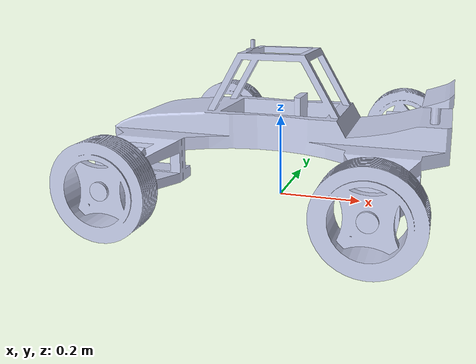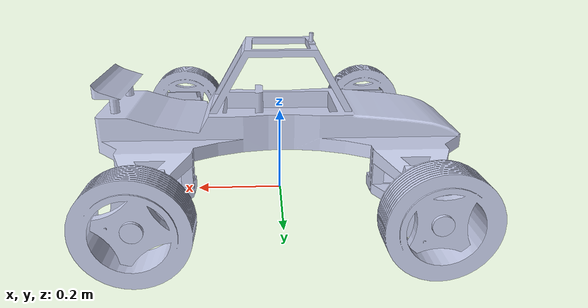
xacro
<?xml version="1.0" ?>
<robot
  name="mobile_car" xmlns:xacro="http://ros.org/wiki/xacro">

  <xacro:macro name="base_link_color">
    <visual>
      <material>
        <ambient>255 0 0 1</ambient>
        <diffuse>255 0 0 1</diffuse>
        <specular>0.1 0.1 0.1 1</specular>
        <emissive>0 0 0 0</emissive>
      </material>
    </visual>
  </xacro:macro>
  <xacro:macro name="lidar_link_color">
    <visual>
      <material>
        <ambient>0 0 225 1</ambient>
        <diffuse>0 0 225 1</diffuse>
        <specular>0.1 0.1 0.1 1</specular>
        <emissive>0 0 0 0</emissive>
      </material>
    </visual>
  </xacro:macro>
  <xacro:macro name="axle_link_color">
    <visual>
      <material>
        <ambient>0 0 0 0.6</ambient>
        <diffuse>0 0 0 0.6</diffuse>
        <specular>0.1 0.1 0.1 1</specular>
        <emissive>0 0 0 0</emissive>
      </material>
    </visual>
  </xacro:macro>
  <xacro:macro name="wheel_link_color">
    <visual>
      <material>
        <ambient>0 0 0 1</ambient>
        <diffuse>0 0 0 1</diffuse>
        <specular>0.1 0.1 0.1 1</specular>
        <emissive>0 0 0 0</emissive>
      </material>
    </visual>
  </xacro:macro>

  # Add this before base link
  <link name="dummy_link"></link>

  <link
    name="base_link">
    <inertial>
      <origin
        xyz="0.010446 -0.00042509 0.16313"
        rpy="0 0 0" />
      <mass
        value="15.415" />
      <inertia
        ixx="0.21291"
        ixy="0.00016421"
        ixz="-0.010824"
        iyy="0.97098"
        iyz="0.00020671"
        izz="1.1289" />
    </inertial>
    <visual>
      <origin
        xyz="0 0 0"
        rpy="0 0 0" />
      <geometry>
        <mesh
          filename="package://mobile_car/meshes/base_link.STL" />
      </geometry>
      <material
        name="">
        <color
          rgba="0.79216 0.81961 0.93333 1" />
      </material>
    </visual>
    <collision>
      <origin
        xyz="0 0 0"
        rpy="0 0 0" />
      <geometry>
        <mesh
          filename="package://mobile_car/meshes/base_link.STL" />
      </geometry>
    </collision>
  </link>

  # Add this after base link
  <joint name="dummy_joint" type="fixed">
    <origin rpy="0 0 0" xyz="0 0 0" />
    <parent link="dummy_link"/>
    <child link="base_link"/>
  </joint>

  <link
    name="axle_link1">
    <inertial>
      <origin
        xyz="-2.3443E-08 0.034189 0.055744"
        rpy="0 0 0" />
      <mass
        value="0.33741" />
      <inertia
        ixx="0.00067039"
        ixy="-1.3884E-10"
        ixz="3.3628E-10"
        iyy="0.00061682"
        iyz="-5.2053E-06"
        izz="0.00043913" />
    </inertial>
    <visual>
      <origin
        xyz="0 0 0"
        rpy="0 0 0" />
      <geometry>
        <mesh
          filename="package://mobile_car/meshes/axle_link1.STL" />
      </geometry>
      <material
        name="">
        <color
          rgba="0.79216 0.81961 0.93333 1" />
      </material>
    </visual>
    <collision>
      <origin
        xyz="0 0 0"
        rpy="0 0 0" />
      <geometry>
        <mesh
          filename="package://mobile_car/meshes/axle_link1.STL" />
      </geometry>
    </collision>
  </link>
  <joint
    name="axle_joint1"
    type="revolute">
    <origin
      xyz="-0.26801 -0.2736 0.051"
      rpy="0 0 3.1397" />
    <parent
      link="base_link" />
    <child
      link="axle_link1" />
    <axis
      xyz="0 0 -1" />
    <limit
      lower="-0.6"
      upper="0.6"
      effort="10"
      velocity="1" />
  </joint>
  <link
    name="wheel_link1">
    <inertial>
      <origin
        xyz="-0.034286 1.5219E-06 -1.7489E-06"
        rpy="0 0 0" />
      <mass
        value="0.8084" />
      <inertia
        ixx="0.0053814"
        ixy="1.6143E-08"
        ixz="-1.8551E-08"
        iyy="0.0029763"
        iyz="4.1157E-08"
        izz="0.0029604" />
    </inertial>
    <visual>
      <origin
        xyz="0 0 0"
        rpy="0 0 0" />
      <geometry>
        <mesh
          filename="package://mobile_car/meshes/wheel_link1.STL" />
      </geometry>
      <material
        name="">
        <color
          rgba="0.79216 0.81961 0.93333 1" />
      </material>
    </visual>
    <collision>
      <origin
        xyz="0 0 0"
        rpy="0 0 0" />
      <geometry>
        <mesh
          filename="package://mobile_car/meshes/wheel_link1.STL" />
      </geometry>
    </collision>
  </link>
  <joint
    name="wheel_joint1"
    type="continuous">
    <origin
      xyz="0 0.050593 0.058981"
      rpy="0 0 -1.5708" />
    <parent
      link="axle_link1" />
    <child
      link="wheel_link1" />
    <axis
      xyz="-1 0 0" />
    <limit
      effort="300"
      velocity="10" />
  </joint>
  <link
    name="axle_link2">
    <inertial>
      <origin
        xyz="-2.3448E-08 0.034189 0.055744"
        rpy="0 0 0" />
      <mass
        value="0.33741" />
      <inertia
        ixx="0.00067039"
        ixy="-1.3888E-10"
        ixz="3.3636E-10"
        iyy="0.00061682"
        iyz="-5.2053E-06"
        izz="0.00043913" />
    </inertial>
    <visual>
      <origin
        xyz="0 0 0"
        rpy="0 0 0" />
      <geometry>
        <mesh
          filename="package://mobile_car/meshes/axle_link2.STL" />
      </geometry>
      <material
        name="">
        <color
          rgba="0.79216 0.81961 0.93333 1" />
      </material>
    </visual>
    <collision>
      <origin
        xyz="0 0 0"
        rpy="0 0 0" />
      <geometry>
        <mesh
          filename="package://mobile_car/meshes/axle_link2.STL" />
      </geometry>
    </collision>
  </link>
  <joint
    name="axle_joint2"
    type="fixed">
    <origin
      xyz="0.26801 -0.2736 0.051"
      rpy="0 0 3.1385" />
    <parent
      link="base_link" />
    <child
      link="axle_link2" />
    <axis
      xyz="0 0 -1" />
  </joint>
  <link
    name="wheel_link2">
    <inertial>
      <origin
        xyz="-0.034544 1.5219E-06 -1.7489E-06"
        rpy="0 0 0" />
      <mass
        value="0.8084" />
      <inertia
        ixx="0.0053814"
        ixy="1.6143E-08"
        ixz="-1.8551E-08"
        iyy="0.0029763"
        iyz="4.1157E-08"
        izz="0.0029604" />
    </inertial>
    <visual>
      <origin
        xyz="0 0 0"
        rpy="0 0 0" />
      <geometry>
        <mesh
          filename="package://mobile_car/meshes/wheel_link2.STL" />
      </geometry>
      <material
        name="">
        <color
          rgba="0.79216 0.81961 0.93333 1" />
      </material>
    </visual>
    <collision>
      <origin
        xyz="0 0 0"
        rpy="0 0 0" />
      <geometry>
        <mesh
          filename="package://mobile_car/meshes/wheel_link2.STL" />
      </geometry>
    </collision>
  </link>
  <joint
    name="wheel_joint2"
    type="continuous">
    <origin
      xyz="0 0.050336 0.058981"
      rpy="0 0 -1.5708" />
    <parent
      link="axle_link2" />
    <child
      link="wheel_link2" />
    <axis
      xyz="-1 0 0" />
    <limit
      effort="300"
      velocity="10" />
  </joint>
  <link
    name="axle_link3">
    <inertial>
      <origin
        xyz="-2.3457E-08 0.034189 0.055744"
        rpy="0 0 0" />
      <mass
        value="0.33741" />
      <inertia
        ixx="0.00067039"
        ixy="-1.3931E-10"
        ixz="3.3642E-10"
        iyy="0.00061682"
        iyz="-5.2053E-06"
        izz="0.00043913" />
    </inertial>
    <visual>
      <origin
        xyz="0 0 0"
        rpy="0 0 0" />
      <geometry>
        <mesh
          filename="package://mobile_car/meshes/axle_link3.STL" />
      </geometry>
      <material
        name="">
        <color
          rgba="0.79216 0.81961 0.93333 1" />
      </material>
    </visual>
    <collision>
      <origin
        xyz="0 0 0"
        rpy="0 0 0" />
      <geometry>
        <mesh
          filename="package://mobile_car/meshes/axle_link3.STL" />
      </geometry>
    </collision>
  </link>
  <joint
    name="axle_joint3"
    type="revolute">
    <origin
      xyz="-0.26801 0.2736 0.051"
      rpy="0 0 0.01392" />
    <parent
      link="base_link" />
    <child
      link="axle_link3" />
    <axis
      xyz="0 0 -1" />
    <limit
      lower="-0.6"
      upper="0.6"
      effort="10"
      velocity="1" />
  </joint>
  <link
    name="wheel_link3">
    <inertial>
      <origin
        xyz="-0.033866 1.5219E-06 -1.7489E-06"
        rpy="0 0 0" />
      <mass
        value="0.8084" />
      <inertia
        ixx="0.0053814"
        ixy="1.6143E-08"
        ixz="-1.8551E-08"
        iyy="0.0029763"
        iyz="4.1157E-08"
        izz="0.0029604" />
    </inertial>
    <visual>
      <origin
        xyz="0 0 0"
        rpy="0 0 0" />
      <geometry>
        <mesh
          filename="package://mobile_car/meshes/wheel_link3.STL" />
      </geometry>
      <material
        name="">
        <color
          rgba="0.79216 0.81961 0.93333 1" />
      </material>
    </visual>
    <collision>
      <origin
        xyz="0 0 0"
        rpy="0 0 0" />
      <geometry>
        <mesh
          filename="package://mobile_car/meshes/wheel_link3.STL" />
      </geometry>
    </collision>
  </link>
  <joint
    name="wheel_joint3"
    type="continuous">
    <origin
      xyz="0 0.051013 0.058981"
      rpy="0 0 -1.5708" />
    <parent
      link="axle_link3" />
    <child
      link="wheel_link3" />
    <axis
      xyz="-1 0 0" />
    <limit
      effort="100"
      velocity="10" />
  </joint>
  <link
    name="axle_link4">
    <inertial>
      <origin
        xyz="-2.3443E-08 0.034189 0.055744"
        rpy="0 0 0" />
      <mass
        value="0.33741" />
      <inertia
        ixx="0.00067039"
        ixy="-1.3884E-10"
        ixz="3.3629E-10"
        iyy="0.00061682"
        iyz="-5.2053E-06"
        izz="0.00043913" />
    </inertial>
    <visual>
      <origin
        xyz="0 0 0"
        rpy="0 0 0" />
      <geometry>
        <mesh
          filename="package://mobile_car/meshes/axle_link4.STL" />
      </geometry>
      <material
        name="">
        <color
          rgba="0.79216 0.81961 0.93333 1" />
      </material>
    </visual>
    <collision>
      <origin
        xyz="0 0 0"
        rpy="0 0 0" />
      <geometry>
        <mesh
          filename="package://mobile_car/meshes/axle_link4.STL" />
      </geometry>
    </collision>
  </link>
  <joint
    name="axle_joint4"
    type="fixed">
    <origin
      xyz="0.26801 0.2736 0.051"
      rpy="0 0 -0.0020094" />
    <parent
      link="base_link" />
    <child
      link="axle_link4" />
    <axis
      xyz="0 0 -1" />
  </joint>
  <link
    name="wheel_link4">
    <inertial>
      <origin
        xyz="-0.034466 1.5219E-06 -1.7489E-06"
        rpy="0 0 0" />
      <mass
        value="0.8084" />
      <inertia
        ixx="0.0053814"
        ixy="1.6143E-08"
        ixz="-1.8551E-08"
        iyy="0.0029763"
        iyz="4.1157E-08"
        izz="0.0029604" />
    </inertial>
    <visual>
      <origin
        xyz="0 0 0"
        rpy="0 0 0" />
      <geometry>
        <mesh
          filename="package://mobile_car/meshes/wheel_link4.STL" />
      </geometry>
      <material
        name="">
        <color
          rgba="0.79216 0.81961 0.93333 1" />
      </material>
    </visual>
    <collision>
      <origin
        xyz="0 0 0"
        rpy="0 0 0" />
      <geometry>
        <mesh
          filename="package://mobile_car/meshes/wheel_link4.STL" />
      </geometry>
    </collision>
  </link>
  <joint
    name="wheel_joint4"
    type="continuous">
    <origin
      xyz="0 0.050413 0.058981"
      rpy="1.0027 0 -1.5708" />
    <parent
      link="axle_link4" />
    <child
      link="wheel_link4" />
    <axis
      xyz="-1 0 0" />
    <limit
      effort="100"
      velocity="10" />
  </joint>
  <link
    name="lidar_link">
    <inertial>
      <origin
        xyz="-0.00051418 0.00036322 -0.007"
        rpy="0 0 0" />
      <mass
        value="0.0015708" />
      <inertia
        ixx="6.2177E-08"
        ixy="5.4763E-56"
        ixz="1.1029E-24"
        iyy="6.2177E-08"
        iyz="-1.5178E-40"
        izz="1.9635E-08" />
    </inertial>
    <visual>
      <origin
        xyz="0 0 0"
        rpy="0 0 0" />
      <geometry>
        <mesh
          filename="package://mobile_car/meshes/lidar_link.STL" />
      </geometry>
      <material
        name="">
        <color
          rgba="0.79216 0.81961 0.93333 1" />
      </material>
    </visual>
    <collision>
      <origin
        xyz="0 0 0"
        rpy="0 0 0" />
      <geometry>
        <mesh
          filename="package://mobile_car/meshes/lidar_link.STL" />
      </geometry>
    </collision>
  </link>
  <joint
    name="lidar_joint"
    type="fixed">
    <origin
      xyz="-0.07 0 0.38"
      rpy="0 0 0" />
    <parent
      link="base_link" />
    <child
      link="lidar_link" />
    <axis
      xyz="0 0 0" />
  </joint>

  <gazebo reference="lidar_link">
    <sensor name="lidar" type="ray">
      <pose>0.0 0.0 0.0 0 0 0</pose>
      <always_on>true</always_on>
      <visualize>true</visualize>
      <update_rate>5</update_rate>
      <ray>
        <scan>
          <horizontal>
            <samples>360</samples>
            <resolution>1.00000</resolution>
            <min_angle>0.000000</min_angle>
            <max_angle>6.280000</max_angle>
          </horizontal>
        </scan>
        <range>
          <min>0.120000</min>
          <max>3.5</max>
          <resolution>0.015000</resolution>
        </range>
        <noise>
          <type>gaussian</type>
          <mean>0.0</mean>
          <stddev>0.01</stddev>
        </noise>
      </ray>
      <plugin name="scan" filename="libgazebo_ros_ray_sensor.so">
        <ros>
          <remapping>~/out:=scan</remapping>
        </ros>
        <output_type>sensor_msgs/LaserScan</output_type>
        <frame_name>lidar_link</frame_name>
      </plugin>
    </sensor>
  </gazebo>

  <gazebo reference="base_link">
    <gravity>true</gravity>
    <sensor name="imu_sensor" type="imu">
      <always_on>true</always_on>
      <update_rate>100</update_rate>
      <visualize>true</visualize>
      <topic>__default_topic__</topic>
      <plugin filename="libgazebo_ros_imu_sensor.so" name="imu_plugin">
        <topicName>imu</topicName>
        <bodyName>base_link</bodyName>
        <updateRateHZ>10.0</updateRateHZ>
        <gaussianNoise>0.0</gaussianNoise>
        <xyzOffset>0 0 0</xyzOffset>
        <rpyOffset>0 0 0</rpyOffset>
        <frameName>base_link</frameName>
        <initialOrientationAsReference>false</initialOrientationAsReference>
      </plugin>
      <pose>0 0 0 0 0 0</pose>
    </sensor>
  </gazebo>

  <ros2_control name="GazeboSystem" type="system">
    <hardware>
      <plugin>gazebo_ros2_control/GazeboSystem</plugin>
    </hardware>
    # Velocity Controllers

    <joint name="wheel_joint1">
      <command_interface name="velocity">
        <param name="min">-10.0</param>
        <param name="max">10.0</param>
      </command_interface>
      <state_interface name="position"/>
      <state_interface name="velocity"/>
    </joint>
    <joint name="wheel_joint2">
      <command_interface name="velocity">
        <param name="min">-10.0</param>
        <param name="max">10.0</param>
      </command_interface>
      <state_interface name="position"/>
      <state_interface name="velocity"/>
    </joint>
    <joint name="wheel_joint3">
      <command_interface name="velocity">
        <param name="min">-10.0</param>
        <param name="max">10.0</param>
      </command_interface>
      <state_interface name="position"/>
      <state_interface name="velocity"/>
    </joint>
    <joint name="wheel_joint4">
      <command_interface name="velocity">
        <param name="min">-10.0</param>
        <param name="max">10.0</param>
      </command_interface>
      <state_interface name="position"/>
      <state_interface name="velocity"/>
    </joint>

    # Position Controller
    <joint name="axle_joint1">
      <command_interface name="position">
        <param name="min">-0.6</param>
        <param name="max">0.6</param>
      </command_interface>
      <state_interface name="position"/>
      <state_interface name="velocity"/>
    </joint>
    <joint name="axle_joint3">
      <command_interface name="position">
        <param name="min">-0.6</param>
        <param name="max">0.6</param>
      </command_interface>
      <state_interface name="position"/>
      <state_interface name="velocity"/>
    </joint>
  </ros2_control>

  <gazebo>
    <plugin filename="libgazebo_ros2_control.so" name="gazebo_ros2_control">
      <parameters>$(find mobile_car)/config/control.yaml</parameters>
    </plugin>
  </gazebo>

  <gazebo reference="base_link">
    <xacro:base_link_color />
  </gazebo>
  <gazebo reference="lidar_link">
    <xacro:lidar_link_color />
  </gazebo>
  <gazebo reference="axle_link1">
    <xacro:axle_link_color />
  </gazebo>
  <gazebo reference="axle_link2">
    <xacro:axle_link_color />
  </gazebo>
  <gazebo reference="axle_link3">
    <xacro:axle_link_color />
  </gazebo>
  <gazebo reference="axle_link4">
    <xacro:axle_link_color />
  </gazebo>
  <gazebo reference="wheel_link1">
    <xacro:wheel_link_color />
  </gazebo>
  <gazebo reference="wheel_link2">
    <xacro:wheel_link_color />
  </gazebo>
  <gazebo reference="wheel_link3">
    <xacro:wheel_link_color />
  </gazebo>
  <gazebo reference="wheel_link4">
    <xacro:wheel_link_color />
  </gazebo>

</robot>
